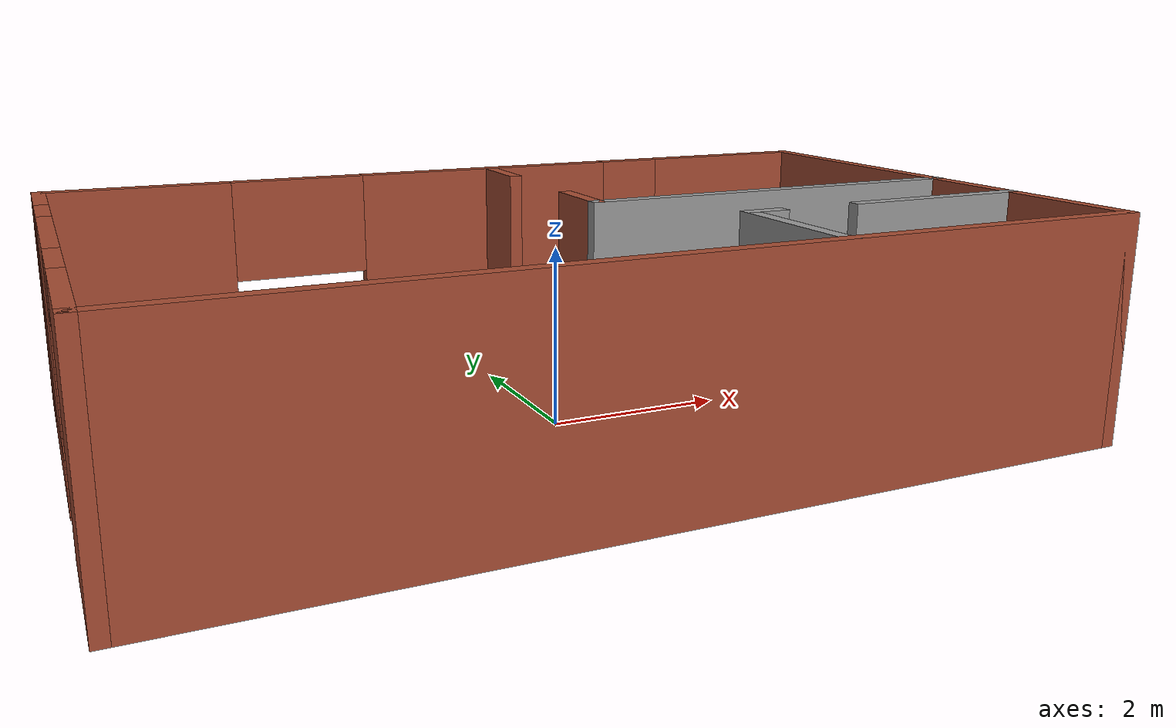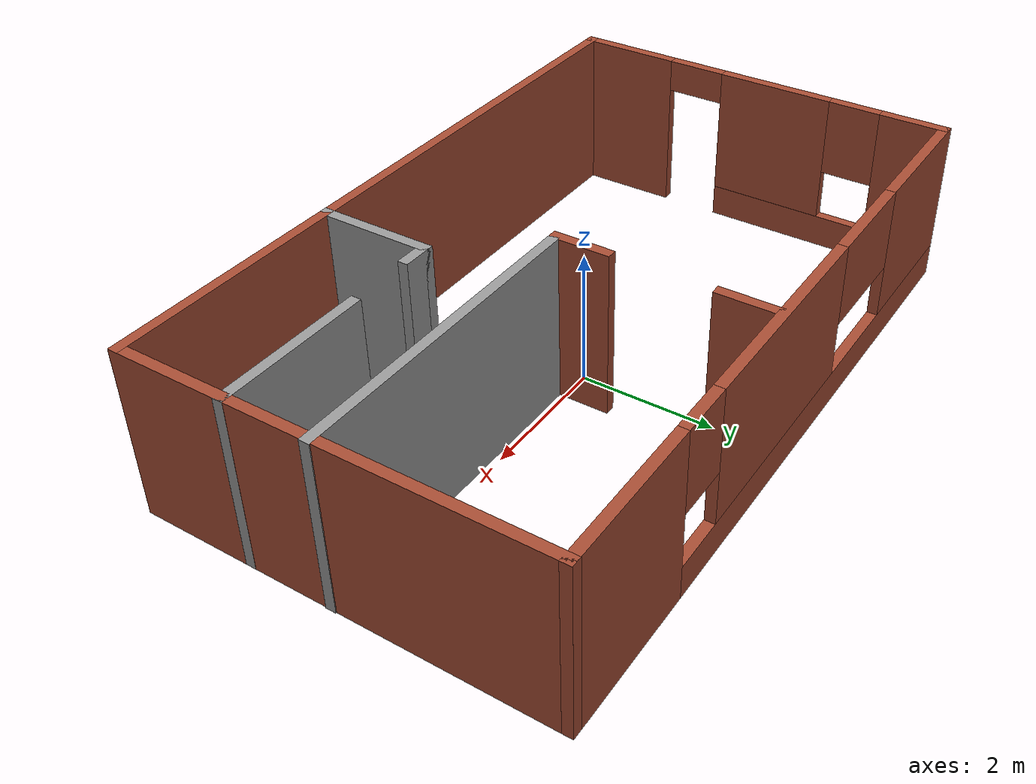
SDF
<?xml version='1.0'?>
<sdf version='1.6'>
  <model name='building'>
    <pose frame=''>0.006393 0 0 0 -0 0</pose>
    <link name='Wall_1'>
      <collision name='Wall_1_Collision'>
        <geometry>
          <box>
            <size>10.15 0.15 2.5</size>
          </box>
        </geometry>
        <pose frame=''>0 0 1.25 0 -0 0</pose>
      </collision>
      <visual name='Wall_1_Visual'>
        <pose frame=''>0 0 1.25 0 -0 0</pose>
        <geometry>
          <box>
            <size>10.15 0.15 2.5</size>
          </box>
        </geometry>
        <material>
          <script>
            <uri>file://media/materials/scripts/gazebo.material</uri>
            <name>Gazebo/Bricks</name>
          </script>
          <ambient>0.760784 0.662745 0.627451 1</ambient>
        </material>
        <meta>
          <layer>0</layer>
        </meta>
      </visual>
      <pose frame=''>-0.006393 -3 0 0 -0 0</pose>
    </link>
    <link name='Wall_11'>
      <collision name='Wall_11_Collision'>
        <geometry>
          <box>
            <size>2.25 0.15 2.5</size>
          </box>
        </geometry>
        <pose frame=''>0 0 1.25 0 -0 0</pose>
      </collision>
      <visual name='Wall_11_Visual'>
        <pose frame=''>0 0 1.25 0 -0 0</pose>
        <geometry>
          <box>
            <size>2.25 0.15 2.5</size>
          </box>
        </geometry>
        <material>
          <script>
            <uri>file://media/materials/scripts/gazebo.material</uri>
            <name>Gazebo/Grey</name>
          </script>
          <ambient>1 1 1 1</ambient>
        </material>
        <meta>
          <layer>0</layer>
        </meta>
      </visual>
      <pose frame=''>3.94466 -1.38999 0 0 -0 3.14159</pose>
    </link>
    <link name='Wall_14'>
      <collision name='Wall_14_Collision'>
        <geometry>
          <box>
            <size>4.75 0.15 2.5</size>
          </box>
        </geometry>
        <pose frame=''>0 0 1.25 0 -0 0</pose>
      </collision>
      <visual name='Wall_14_Visual'>
        <pose frame=''>0 0 1.25 0 -0 0</pose>
        <geometry>
          <box>
            <size>4.75 0.15 2.5</size>
          </box>
        </geometry>
        <material>
          <script>
            <uri>file://media/materials/scripts/gazebo.material</uri>
            <name>Gazebo/Grey</name>
          </script>
          <ambient>1 1 1 1</ambient>
        </material>
        <meta>
          <layer>0</layer>
        </meta>
      </visual>
      <pose frame=''>2.70639 -0.159246 0 0 -0 3.14149</pose>
    </link>
    <link name='Wall_16'>
      <collision name='Wall_16_Collision'>
        <geometry>
          <box>
            <size>0.9 0.15 2.5</size>
          </box>
        </geometry>
        <pose frame=''>0 0 1.25 0 -0 0</pose>
      </collision>
      <visual name='Wall_16_Visual'>
        <pose frame=''>0 0 1.25 0 -0 0</pose>
        <geometry>
          <box>
            <size>0.9 0.15 2.5</size>
          </box>
        </geometry>
        <material>
          <script>
            <uri>file://media/materials/scripts/gazebo.material</uri>
            <name>Gazebo/Bricks</name>
          </script>
          <ambient>1 1 1 1</ambient>
        </material>
        <meta>
          <layer>0</layer>
        </meta>
      </visual>
      <pose frame=''>0.406607 0.216 0 0 -0 1.5708</pose>
    </link>
    <link name='Wall_2'>
      <collision name='Wall_2_Collision'>
        <geometry>
          <box>
            <size>6.15 0.15 2.5</size>
          </box>
        </geometry>
        <pose frame=''>0 0 1.25 0 -0 0</pose>
      </collision>
      <visual name='Wall_2_Visual'>
        <pose frame=''>0 0 1.25 0 -0 0</pose>
        <geometry>
          <box>
            <size>6.15 0.15 2.5</size>
          </box>
        </geometry>
        <material>
          <script>
            <uri>file://media/materials/scripts/gazebo.material</uri>
            <name>Gazebo/Bricks</name>
          </script>
          <ambient>1 1 1 1</ambient>
        </material>
        <meta>
          <layer>0</layer>
        </meta>
      </visual>
      <pose frame=''>4.99361 0 0 0 -0 1.5708</pose>
    </link>
    <link name='Wall_21'>
      <collision name='Wall_21_Collision'>
        <geometry>
          <box>
            <size>0.9 0.15 2.5</size>
          </box>
        </geometry>
        <pose frame=''>0 0 1.25 0 -0 0</pose>
      </collision>
      <visual name='Wall_21_Visual'>
        <pose frame=''>0 0 1.25 0 -0 0</pose>
        <geometry>
          <box>
            <size>0.9 0.15 2.5</size>
          </box>
        </geometry>
        <material>
          <script>
            <uri>file://media/materials/scripts/gazebo.material</uri>
            <name>Gazebo/Bricks</name>
          </script>
          <ambient>1 1 1 1</ambient>
        </material>
        <meta>
          <layer>0</layer>
        </meta>
      </visual>
      <pose frame=''>0.406607 2.548 0 0 0 -1.5708</pose>
    </link>
    <link name='Wall_3'>
      <pose frame=''>-0.006393 3 0 0 -0 3.14159</pose>
      <visual name='Wall_3_Visual_0'>
        <pose frame=''>-3.95578 0 1.25 0 -0 0</pose>
        <geometry>
          <box>
            <size>2.23845 0.15 2.5</size>
          </box>
        </geometry>
        <material>
          <script>
            <uri>file://media/materials/scripts/gazebo.material</uri>
            <name>Gazebo/Bricks</name>
          </script>
          <ambient>0.760784 0.662745 0.627451 1</ambient>
        </material>
        <meta>
          <layer>0</layer>
        </meta>
      </visual>
      <collision name='Wall_3_Collision_0'>
        <geometry>
          <box>
            <size>2.23845 0.15 2.5</size>
          </box>
        </geometry>
        <pose frame=''>-3.95578 0 1.25 0 -0 0</pose>
      </collision>
      <visual name='Wall_3_Visual_1'>
        <pose frame=''>1.11922 0 0.25 0 -0 0</pose>
        <geometry>
          <box>
            <size>7.91155 0.15 0.5</size>
          </box>
        </geometry>
        <material>
          <script>
            <uri>file://media/materials/scripts/gazebo.material</uri>
            <name>Gazebo/Bricks</name>
          </script>
          <ambient>0.760784 0.662745 0.627451 1</ambient>
        </material>
        <meta>
          <layer>0</layer>
        </meta>
      </visual>
      <collision name='Wall_3_Collision_1'>
        <geometry>
          <box>
            <size>7.91155 0.15 0.5</size>
          </box>
        </geometry>
        <pose frame=''>1.11922 0 0.25 0 -0 0</pose>
      </collision>
      <visual name='Wall_3_Visual_2'>
        <pose frame=''>-0.371055 0 1.5 0 -0 0</pose>
        <geometry>
          <box>
            <size>3.331 0.15 2</size>
          </box>
        </geometry>
        <material>
          <script>
            <uri>file://media/materials/scripts/gazebo.material</uri>
            <name>Gazebo/Bricks</name>
          </script>
          <ambient>0.760784 0.662745 0.627451 1</ambient>
        </material>
        <meta>
          <layer>0</layer>
        </meta>
      </visual>
      <collision name='Wall_3_Collision_2'>
        <geometry>
          <box>
            <size>3.331 0.15 2</size>
          </box>
        </geometry>
        <pose frame=''>-0.371055 0 1.5 0 -0 0</pose>
      </collision>
      <visual name='Wall_3_Visual_3'>
        <pose frame=''>3.98472 0 1.5 0 -0 0</pose>
        <geometry>
          <box>
            <size>2.18056 0.15 2</size>
          </box>
        </geometry>
        <material>
          <script>
            <uri>file://media/materials/scripts/gazebo.material</uri>
            <name>Gazebo/Bricks</name>
          </script>
          <ambient>0.760784 0.662745 0.627451 1</ambient>
        </material>
        <meta>
          <layer>0</layer>
        </meta>
      </visual>
      <collision name='Wall_3_Collision_3'>
        <geometry>
          <box>
            <size>2.18056 0.15 2</size>
          </box>
        </geometry>
        <pose frame=''>3.98472 0 1.5 0 -0 0</pose>
      </collision>
      <visual name='Wall_3_Visual_4'>
        <pose frame=''>-2.43655 0 1.9 0 -0 0</pose>
        <geometry>
          <box>
            <size>0.8 0.15 1.2</size>
          </box>
        </geometry>
        <material>
          <script>
            <uri>file://media/materials/scripts/gazebo.material</uri>
            <name>Gazebo/Bricks</name>
          </script>
          <ambient>0.760784 0.662745 0.627451 1</ambient>
        </material>
        <meta>
          <layer>0</layer>
        </meta>
      </visual>
      <collision name='Wall_3_Collision_4'>
        <geometry>
          <box>
            <size>0.8 0.15 1.2</size>
          </box>
        </geometry>
        <pose frame=''>-2.43655 0 1.9 0 -0 0</pose>
      </collision>
      <visual name='Wall_3_Visual_5'>
        <pose frame=''>2.09444 0 1.9 0 -0 0</pose>
        <geometry>
          <box>
            <size>1.6 0.15 1.2</size>
          </box>
        </geometry>
        <material>
          <script>
            <uri>file://media/materials/scripts/gazebo.material</uri>
            <name>Gazebo/Bricks</name>
          </script>
          <ambient>0.760784 0.662745 0.627451 1</ambient>
        </material>
        <meta>
          <layer>0</layer>
        </meta>
      </visual>
      <collision name='Wall_3_Collision_5'>
        <geometry>
          <box>
            <size>1.6 0.15 1.2</size>
          </box>
        </geometry>
        <pose frame=''>2.09444 0 1.9 0 -0 0</pose>
      </collision>
    </link>
    <link name='Wall_4'>
      <pose frame=''>-5.00639 0 0 0 0 -1.5708</pose>
      <visual name='Wall_4_Visual_0'>
        <pose frame=''>-2.55475 0 1.25 0 -0 0</pose>
        <geometry>
          <box>
            <size>1.04049 0.15 2.5</size>
          </box>
        </geometry>
        <material>
          <script>
            <uri>file://media/materials/scripts/gazebo.material</uri>
            <name>Gazebo/Bricks</name>
          </script>
          <ambient>1 1 1 1</ambient>
        </material>
        <meta>
          <layer>0</layer>
        </meta>
      </visual>
      <collision name='Wall_4_Collision_0'>
        <geometry>
          <box>
            <size>1.04049 0.15 2.5</size>
          </box>
        </geometry>
        <pose frame=''>-2.55475 0 1.25 0 -0 0</pose>
      </collision>
      <visual name='Wall_4_Visual_1'>
        <pose frame=''>2.2735 0 1.25 0 -0 0</pose>
        <geometry>
          <box>
            <size>1.60301 0.15 2.5</size>
          </box>
        </geometry>
        <material>
          <script>
            <uri>file://media/materials/scripts/gazebo.material</uri>
            <name>Gazebo/Bricks</name>
          </script>
          <ambient>1 1 1 1</ambient>
        </material>
        <meta>
          <layer>0</layer>
        </meta>
      </visual>
      <collision name='Wall_4_Collision_1'>
        <geometry>
          <box>
            <size>1.60301 0.15 2.5</size>
          </box>
        </geometry>
        <pose frame=''>2.2735 0 1.25 0 -0 0</pose>
      </collision>
      <visual name='Wall_4_Visual_2'>
        <pose frame=''>-0.731257 0 0.25 0 -0 0</pose>
        <geometry>
          <box>
            <size>2.6065 0.15 0.5</size>
          </box>
        </geometry>
        <material>
          <script>
            <uri>file://media/materials/scripts/gazebo.material</uri>
            <name>Gazebo/Bricks</name>
          </script>
          <ambient>1 1 1 1</ambient>
        </material>
        <meta>
          <layer>0</layer>
        </meta>
      </visual>
      <collision name='Wall_4_Collision_2'>
        <geometry>
          <box>
            <size>2.6065 0.15 0.5</size>
          </box>
        </geometry>
        <pose frame=''>-0.731257 0 0.25 0 -0 0</pose>
      </collision>
      <visual name='Wall_4_Visual_3'>
        <pose frame=''>-0.331257 0 1.5 0 -0 0</pose>
        <geometry>
          <box>
            <size>1.8065 0.15 2</size>
          </box>
        </geometry>
        <material>
          <script>
            <uri>file://media/materials/scripts/gazebo.material</uri>
            <name>Gazebo/Bricks</name>
          </script>
          <ambient>1 1 1 1</ambient>
        </material>
        <meta>
          <layer>0</layer>
        </meta>
      </visual>
      <collision name='Wall_4_Collision_3'>
        <geometry>
          <box>
            <size>1.8065 0.15 2</size>
          </box>
        </geometry>
        <pose frame=''>-0.331257 0 1.5 0 -0 0</pose>
      </collision>
      <visual name='Wall_4_Visual_4'>
        <pose frame=''>-1.63451 0 1.9 0 -0 0</pose>
        <geometry>
          <box>
            <size>0.8 0.15 1.2</size>
          </box>
        </geometry>
        <material>
          <script>
            <uri>file://media/materials/scripts/gazebo.material</uri>
            <name>Gazebo/Bricks</name>
          </script>
          <ambient>1 1 1 1</ambient>
        </material>
        <meta>
          <layer>0</layer>
        </meta>
      </visual>
      <collision name='Wall_4_Collision_4'>
        <geometry>
          <box>
            <size>0.8 0.15 1.2</size>
          </box>
        </geometry>
        <pose frame=''>-1.63451 0 1.9 0 -0 0</pose>
      </collision>
      <visual name='Wall_4_Visual_5'>
        <pose frame=''>1.02199 0 2.25 0 -0 0</pose>
        <geometry>
          <box>
            <size>0.9 0.15 0.5</size>
          </box>
        </geometry>
        <material>
          <script>
            <uri>file://media/materials/scripts/gazebo.material</uri>
            <name>Gazebo/Bricks</name>
          </script>
          <ambient>1 1 1 1</ambient>
        </material>
        <meta>
          <layer>0</layer>
        </meta>
      </visual>
      <collision name='Wall_4_Collision_5'>
        <geometry>
          <box>
            <size>0.9 0.15 0.5</size>
          </box>
        </geometry>
        <pose frame=''>1.02199 0 2.25 0 -0 0</pose>
      </collision>
    </link>
    <link name='Wall_6'>
      <collision name='Wall_6_Collision'>
        <geometry>
          <box>
            <size>1.75 0.15 2.5</size>
          </box>
        </geometry>
        <pose frame=''>0 0 1.25 0 -0 0</pose>
      </collision>
      <visual name='Wall_6_Visual'>
        <pose frame=''>0 0 1.25 0 -0 0</pose>
        <geometry>
          <box>
            <size>1.75 0.15 2.5</size>
          </box>
        </geometry>
        <material>
          <script>
            <uri>file://media/materials/scripts/gazebo.material</uri>
            <name>Gazebo/Grey</name>
          </script>
          <ambient>1 1 1 1</ambient>
        </material>
        <meta>
          <layer>0</layer>
        </meta>
      </visual>
      <pose frame=''>1.52166 -2.19999 0 0 -0 1.5708</pose>
    </link>
    <link name='Wall_7'>
      <collision name='Wall_7_Collision'>
        <geometry>
          <box>
            <size>0.5 0.15 2.5</size>
          </box>
        </geometry>
        <pose frame=''>0 0 1.25 0 -0 0</pose>
      </collision>
      <visual name='Wall_7_Visual'>
        <pose frame=''>0 0 1.25 0 -0 0</pose>
        <geometry>
          <box>
            <size>0.5 0.15 2.5</size>
          </box>
        </geometry>
        <material>
          <script>
            <uri>file://media/materials/scripts/gazebo.material</uri>
            <name>Gazebo/Grey</name>
          </script>
          <ambient>1 1 1 1</ambient>
        </material>
        <meta>
          <layer>0</layer>
        </meta>
      </visual>
      <pose frame=''>1.69666 -1.39999 0 0 -0 0</pose>
    </link>
    <static>1</static>
  </model>
</sdf>
